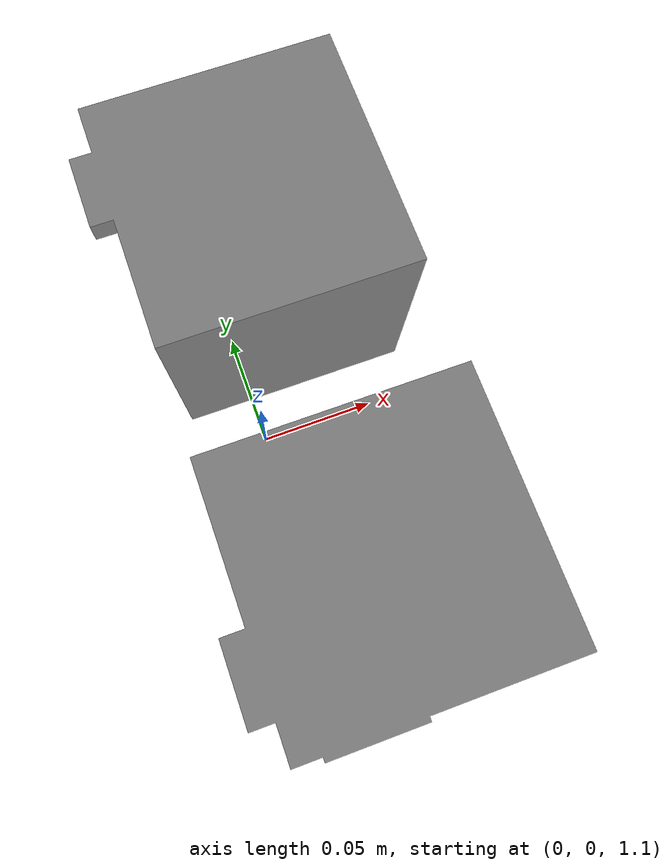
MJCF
<mujoco model="reflected_meshes">
    <compiler meshdir="assets"/>

    <asset>
        <mesh name="complexCube" scale="0.1 0.1 0.1" file="complex_cube.obj" />
        <mesh name="complexCubeMirror" scale="0.1 -0.1 0.1" file="complex_cube.obj"/>
    </asset>

  <worldbody>
    <body name="body" pos="0 0 1.1">
      <body name="bodyRegular" pos="0.021 0.07 0" xyaxes="0 0 -1 0 1 0">
        <geom type="mesh" mesh="complexCube" euler="0 0 90"/>
      </body>
      <body name="bodyReflected" pos="0.021 -0.07 0" xyaxes="0 0 -1 0 1 0">
        <geom type="mesh" mesh="complexCubeMirror" euler="0 0 -90"/>
      </body>
    </body>
  </worldbody>

</mujoco>
